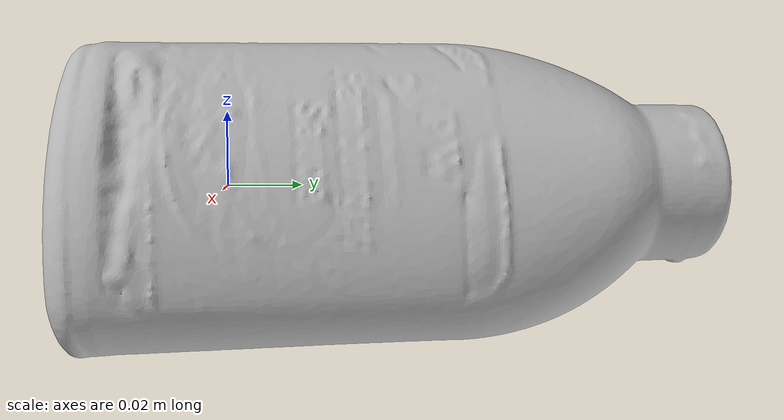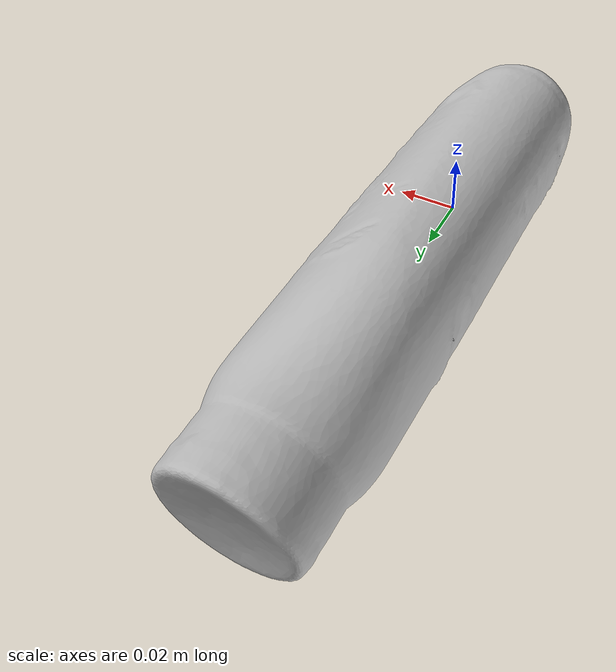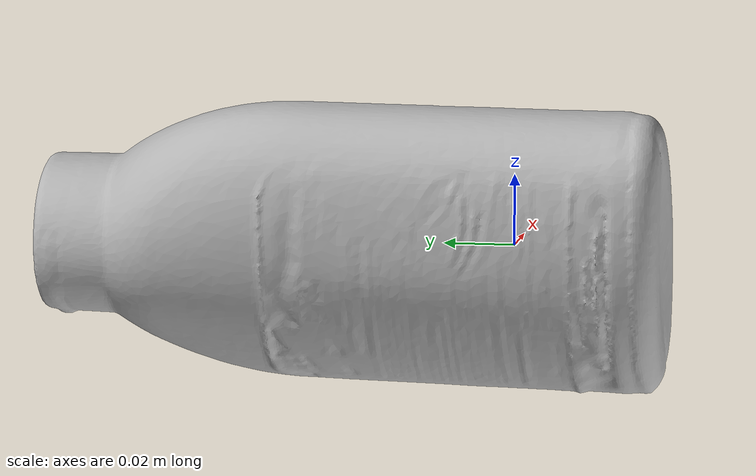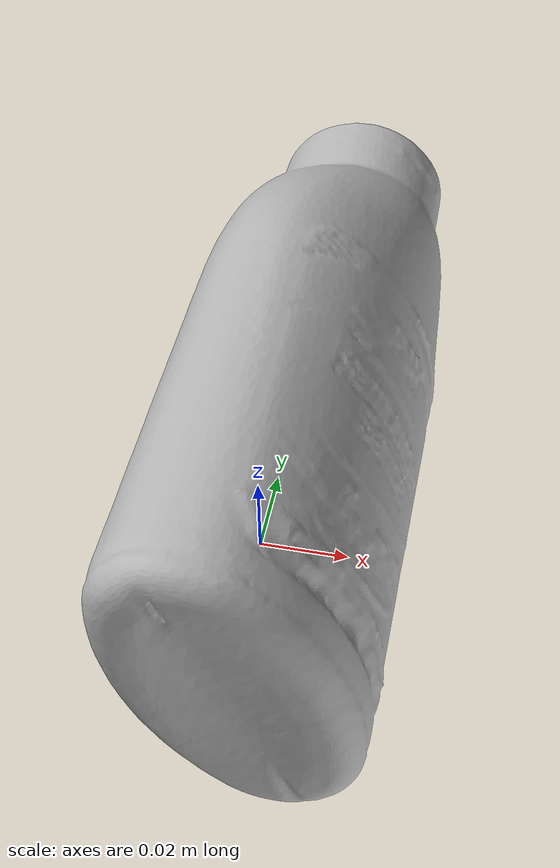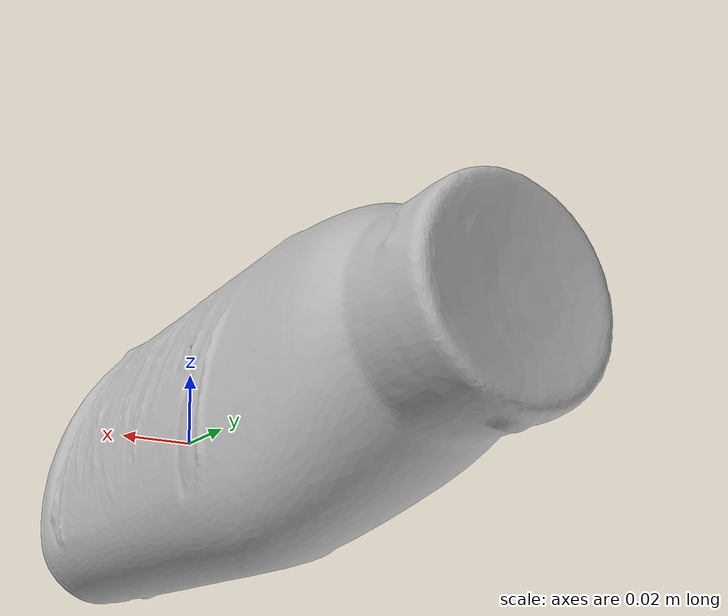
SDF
<?xml version='1.0'?>
<sdf version="1.4">
  <model name="HamburgerSauce">
    <static>false</static>
    <link name="link">
      <inertial>
        <pose>0.0014328977776115852 0.03804396512162363 -0.0009534288615352629 -1.5831640535484774 0.408493862868591 3.130725688729994</pose>
        <mass>0.05656449178863788</mass>
        <inertia>
          <ixx>0.00014997692549632556</ixx>
          <ixy>1.0596749682995877e-20</ixy>
          <ixz>-1.846722637996047e-20</ixz>
          <iyy>0.0001361439054247229</iyy>
          <iyz>-3.283896134410328e-20</iyz>
          <izz>3.327118890843596e-05</izz>
        </inertia>
      </inertial>
      <collision name="collision">
        <geometry>
          <mesh>
            <!-- Use a downsampled mesh for collisions -->
            <uri>model:///HamburgerSauce/HamburgerSauce_250_collision.obj</uri>
	        </mesh>
        </geometry>
        <surface>
      </surface>
      </collision>
      <visual name="visual">
        <geometry>
          <mesh>
            <uri>model:///HamburgerSauce/HamburgerSauce_25k_tex.obj</uri>
	        </mesh>
        </geometry>
        <material>
          <script>
            <uri>model:///HamburgerSauce/HamburgerSauce.material</uri>
            <name>HamburgerSauce</name>
          </script>
        </material>
      </visual>
    </link>
  </model>
</sdf>
